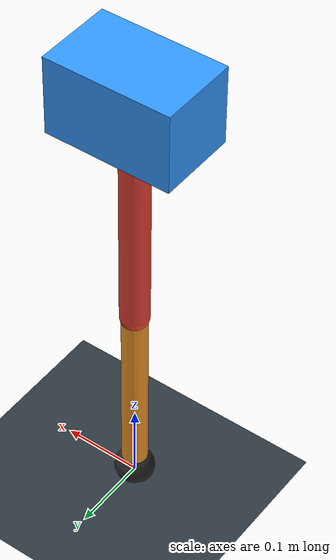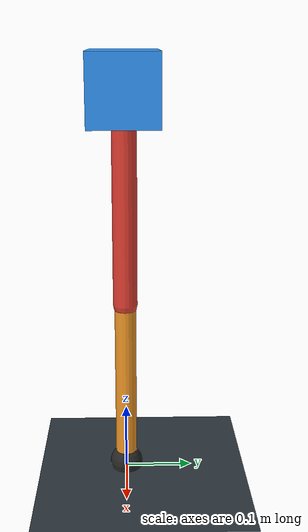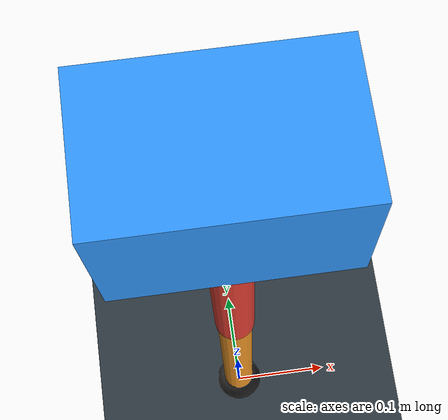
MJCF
<mujoco model="single_axis_two_bar">
  <compiler angle="radian" inertiafromgeom="true"/>
  <option timestep="0.001" integrator="implicitfast" gravity="0 0 -9.81"/>
  <default>
    <joint damping="0.08"/>
    <geom friction="1.2 0.01 0.0001" condim="3"/>
  </default>
  <worldbody>
    <geom name="floor" type="plane" size="5 5 0.1" rgba="0.18 0.22 0.25 1"/>
    <body name="carriage" pos="0 0 0.582436590662618">
      <joint name="pole_slide" type="slide" axis="0 0 1"/>
      <geom name="payload" type="box" size="0.08 0.05 0.05" mass="2.6660877721287592" rgba="0.2 0.6 1 1"/>
      <body name="thigh" pos="0 0 0">
        <joint name="hip" type="hinge" axis="0 1 0"/>
        <geom name="thigh_link" type="capsule" fromto="0 0 0 0 0 -0.3160998952930687" size="0.018" mass="0.2252253522879074" rgba="0.9 0.25 0.2 1"/>
        <body name="shank" pos="0 0 -0.3160998952930687">
          <joint name="knee" type="hinge" axis="0 1 0"/>
          <geom name="shank_link" type="capsule" fromto="0 0 0 0 0 -0.25857700229725905" size="0.016" mass="0.1842395309304243" rgba="0.95 0.6 0.15 1"/>
          <geom name="foot" type="sphere" pos="0 0 -0.25857700229725905" size="0.025" mass="0.03" rgba="0.15 0.15 0.15 1"/>
          <site name="toe" pos="0 0 -0.25857700229725905" size="0.008"/>
        </body>
      </body>
    </body>
  </worldbody>
  <actuator>
    <motor name="hip_motor" joint="hip" ctrlrange="-33.79312496002256 33.79312496002256"/>
    <motor name="knee_motor" joint="knee" ctrlrange="-101.87594261316693 101.87594261316693"/>
  </actuator>
</mujoco>
